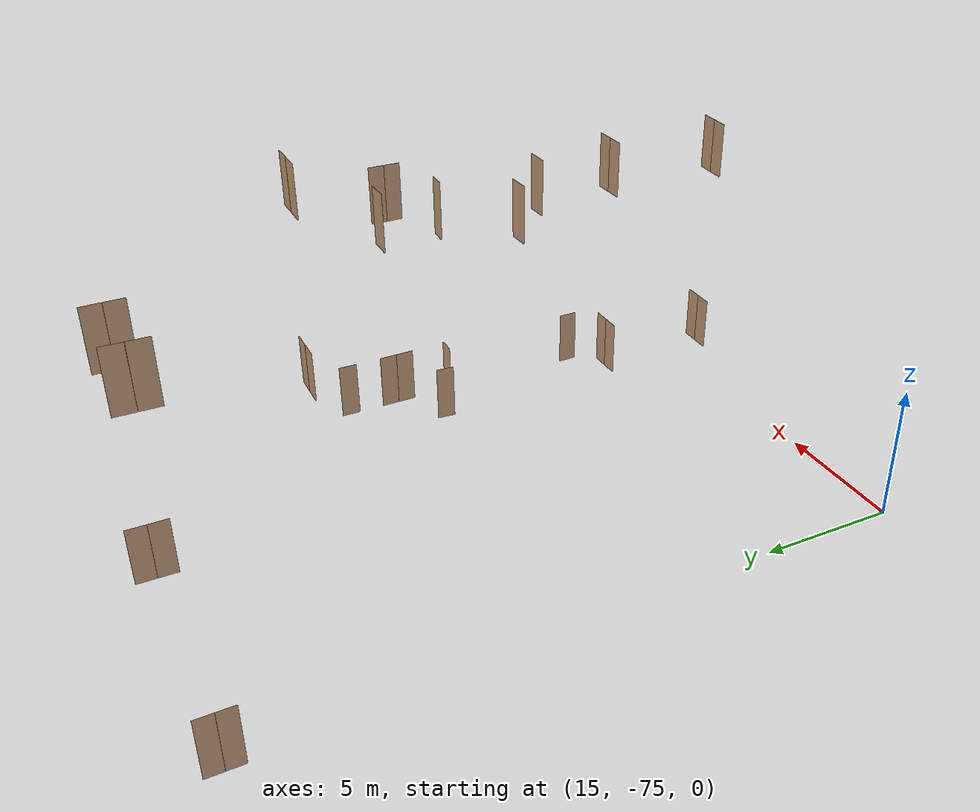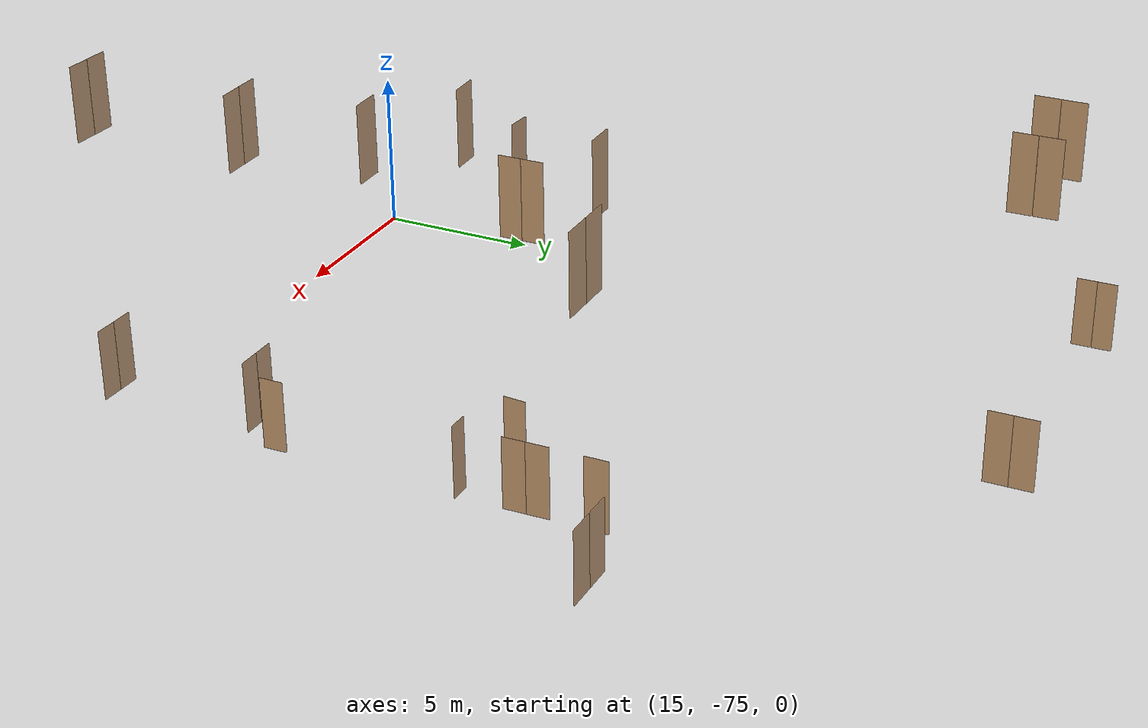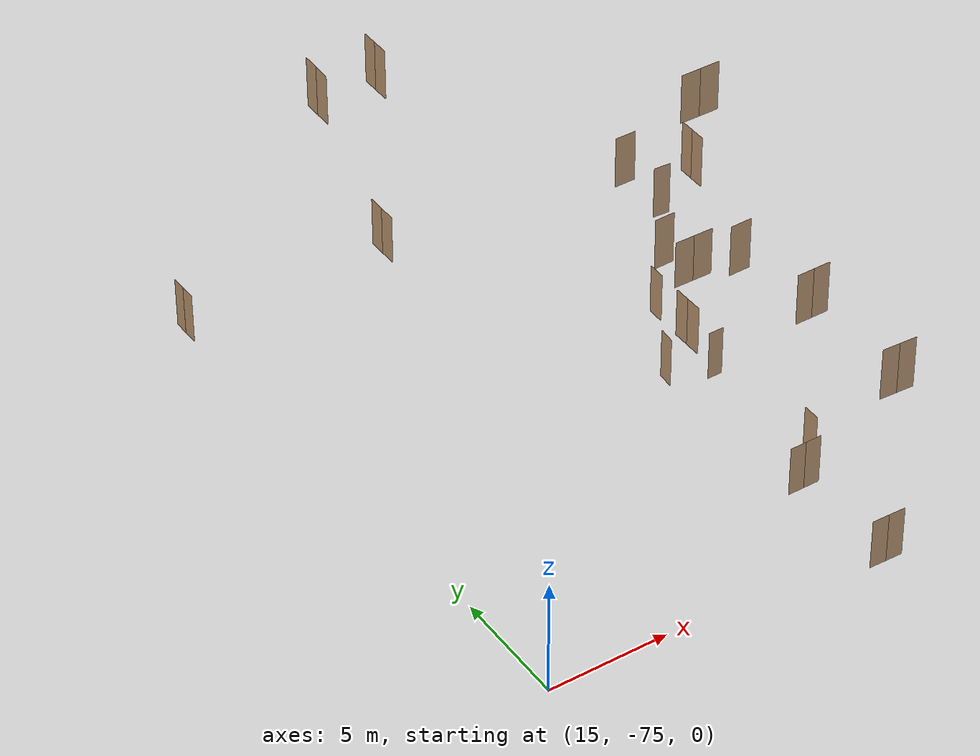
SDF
<sdf version="1.7">
 <world name="sim_world">
  <model name="TD1013AL2">
   <pose>28.615494677734596 -71.43441845900185 0.0 0 0 -3.1360970245967152</pose>
   <link name="right">
    <pose>0.3400059322993263 0 1.11 0 0 0</pose>
    <visual name="right_visual">
     <geometry><box><size>0.6700118645986526 0.03 2.2</size></box></geometry>
     <material>
      <ambient>0.5 0.25 0 0.6</ambient>
      <diffuse>0.5 0.25 0 0.6</diffuse>
      <pbr><metal><metalness>0.0</metalness></metal></pbr>
     </material>
    </visual>
    <collision name="right_collision">
     <geometry><box><size>0.6700118645986526 0.03 2.2</size></box></geometry>
     <surface><contact><collide_bitmask>0x02</collide_bitmask></contact></surface>
    </collision>
    <inertial>
     <mass>50.0</mass>
     <inertia><ixx>20.17041666666667</ixx><iyy>22.037149577929018</iyy><izz>1.8742329112623468</izz></inertia>
    </inertial>
   </link>
   <joint name="right_joint" type="revolute">
    <parent>world</parent>
    <child>right</child>
    <axis><xyz>0 0 -1</xyz><limit><lower>0</lower><upper>1.57</upper></limit></axis>
    <pose>0.3400059322993263 0 0 0 0 0</pose>
   </joint>
   <link name="left">
    <pose>-0.3400059322993263 0 1.11 0 0 0</pose>
    <visual name="left_visual">
     <geometry><box><size>0.6700118645986526 0.03 2.2</size></box></geometry>
     <material>
      <ambient>0.5 0.25 0 0.6</ambient>
      <diffuse>0.5 0.25 0 0.6</diffuse>
      <pbr><metal><metalness>0.0</metalness></metal></pbr>
     </material>
    </visual>
    <collision name="left_collision">
     <geometry><box><size>0.6700118645986526 0.03 2.2</size></box></geometry>
     <surface><contact><collide_bitmask>0x02</collide_bitmask></contact></surface>
    </collision>
    <inertial>
     <mass>50.0</mass>
     <inertia><ixx>20.17041666666667</ixx><iyy>22.037149577929018</iyy><izz>1.8742329112623468</izz></inertia>
    </inertial>
   </link>
   <joint name="left_joint" type="revolute">
    <parent>world</parent>
    <child>left</child>
    <axis><xyz>0 0 -1</xyz><limit><lower>-1.57</lower><upper>0</upper></limit></axis>
    <pose>-0.3400059322993263 0 0 0 0 0</pose>
   </joint>
   <plugin name="register_component" filename="libregister_component.so">
    <component name="Door">
     <v_max_door>0.5</v_max_door>
     <a_max_door>0.3</a_max_door>
     <a_nom_door>0.15</a_nom_door>
     <dx_min_door>0.01</dx_min_door>
     <f_max_door>500.0</f_max_door>
     <ros_interface>true</ros_interface>
     <door name="TD1013AL2" type="DoubleSwingDoor" left_joint_name="left_joint" right_joint_name="right_joint"/>
    </component>
   </plugin>
  </model>
  <model name="TD1012AL">
   <pose>28.74935599891922 -76.20730177365475 0.0 0 0 -0.019155480712126263</pose>
   <link name="right">
    <pose>0.3506591178894858 0 1.11 0 0 0</pose>
    <visual name="right_visual">
     <geometry><box><size>0.6913182357789716 0.03 2.2</size></box></geometry>
     <material>
      <ambient>0.5 0.25 0 0.6</ambient>
      <diffuse>0.5 0.25 0 0.6</diffuse>
      <pbr><metal><metalness>0.0</metalness></metal></pbr>
     </material>
    </visual>
    <collision name="right_collision">
     <geometry><box><size>0.6913182357789716 0.03 2.2</size></box></geometry>
     <surface><contact><collide_bitmask>0x02</collide_bitmask></contact></surface>
    </collision>
    <inertial>
     <mass>50.0</mass>
     <inertia><ixx>20.17041666666667</ixx><iyy>22.158003763002295</iyy><izz>1.995087096335624</izz></inertia>
    </inertial>
   </link>
   <joint name="right_joint" type="revolute">
    <parent>world</parent>
    <child>right</child>
    <axis><xyz>0 0 -1</xyz><limit><lower>0</lower><upper>1.57</upper></limit></axis>
    <pose>0.3506591178894858 0 0 0 0 0</pose>
   </joint>
   <link name="left">
    <pose>-0.3506591178894858 0 1.11 0 0 0</pose>
    <visual name="left_visual">
     <geometry><box><size>0.6913182357789716 0.03 2.2</size></box></geometry>
     <material>
      <ambient>0.5 0.25 0 0.6</ambient>
      <diffuse>0.5 0.25 0 0.6</diffuse>
      <pbr><metal><metalness>0.0</metalness></metal></pbr>
     </material>
    </visual>
    <collision name="left_collision">
     <geometry><box><size>0.6913182357789716 0.03 2.2</size></box></geometry>
     <surface><contact><collide_bitmask>0x02</collide_bitmask></contact></surface>
    </collision>
    <inertial>
     <mass>50.0</mass>
     <inertia><ixx>20.17041666666667</ixx><iyy>22.158003763002295</iyy><izz>1.995087096335624</izz></inertia>
    </inertial>
   </link>
   <joint name="left_joint" type="revolute">
    <parent>world</parent>
    <child>left</child>
    <axis><xyz>0 0 -1</xyz><limit><lower>-1.57</lower><upper>0</upper></limit></axis>
    <pose>-0.3506591178894858 0 0 0 0 0</pose>
   </joint>
   <plugin name="register_component" filename="libregister_component.so">
    <component name="Door">
     <v_max_door>0.5</v_max_door>
     <a_max_door>0.3</a_max_door>
     <a_nom_door>0.15</a_nom_door>
     <dx_min_door>0.01</dx_min_door>
     <f_max_door>500.0</f_max_door>
     <ros_interface>true</ros_interface>
     <door name="TD1012AL" type="DoubleSwingDoor" left_joint_name="left_joint" right_joint_name="right_joint"/>
    </component>
   </plugin>
  </model>
  <model name="TN3">
   <pose>29.7646617994637 -70.20799602749449 0.0 0 0 1.5837881802092755</pose>
   <link name="right">
    <pose>0 0 1.11 0 0 0</pose>
    <visual name="right_visual">
     <geometry><box><size>0.7225283452947034 0.03 2.2</size></box></geometry>
     <material>
      <ambient>0.5 0.25 0 0.6</ambient>
      <diffuse>0.5 0.25 0 0.6</diffuse>
      <pbr><metal><metalness>0.0</metalness></metal></pbr>
     </material>
    </visual>
    <collision name="right_collision">
     <geometry><box><size>0.7225283452947034 0.03 2.2</size></box></geometry>
     <surface><contact><collide_bitmask>0x02</collide_bitmask></contact></surface>
    </collision>
    <inertial>
     <mass>50.0</mass>
     <inertia><ixx>20.17041666666667</ixx><iyy>22.341863373976267</iyy><izz>2.1789467073095925</izz></inertia>
    </inertial>
   </link>
   <joint name="right_joint" type="revolute">
    <parent>world</parent>
    <child>right</child>
    <axis><xyz>0 0 -1</xyz><limit><lower>0</lower><upper>1.57</upper></limit></axis>
    <pose>0.3662641726473517 0 0 0 0 0</pose>
   </joint>
   <plugin name="register_component" filename="libregister_component.so">
    <component name="Door">
     <v_max_door>0.5</v_max_door>
     <a_max_door>0.3</a_max_door>
     <a_nom_door>0.15</a_nom_door>
     <dx_min_door>0.01</dx_min_door>
     <f_max_door>500.0</f_max_door>
     <ros_interface>true</ros_interface>
     <door name="TN3" type="SwingDoor" left_joint_name="empty_joint" right_joint_name="right_joint"/>
    </component>
   </plugin>
  </model>
  <model name="TD1013AL1">
   <pose>29.58629226233187 -64.46540370538672 0.0 0 0 0.009366742804353713</pose>
   <link name="right">
    <pose>0 0 1.11 0 0 0</pose>
    <visual name="right_visual">
     <geometry><box><size>0.6226145179343526 0.03 2.2</size></box></geometry>
     <material>
      <ambient>0.5 0.25 0 0.6</ambient>
      <diffuse>0.5 0.25 0 0.6</diffuse>
      <pbr><metal><metalness>0.0</metalness></metal></pbr>
     </material>
    </visual>
    <collision name="right_collision">
     <geometry><box><size>0.6226145179343526 0.03 2.2</size></box></geometry>
     <surface><contact><collide_bitmask>0x02</collide_bitmask></contact></surface>
    </collision>
    <inertial>
     <mass>50.0</mass>
     <inertia><ixx>20.17041666666667</ixx><iyy>21.78187015809428</iyy><izz>1.6189534914276098</izz></inertia>
    </inertial>
   </link>
   <joint name="right_joint" type="revolute">
    <parent>world</parent>
    <child>right</child>
    <axis><xyz>0 0 1</xyz><limit><lower>0</lower><upper>1.57</upper></limit></axis>
    <pose>0.3163072589671763 0 0 0 0 0</pose>
   </joint>
   <plugin name="register_component" filename="libregister_component.so">
    <component name="Door">
     <v_max_door>0.5</v_max_door>
     <a_max_door>0.3</a_max_door>
     <a_nom_door>0.15</a_nom_door>
     <dx_min_door>0.01</dx_min_door>
     <f_max_door>500.0</f_max_door>
     <ros_interface>true</ros_interface>
     <door name="TD1013AL1" type="SwingDoor" left_joint_name="empty_joint" right_joint_name="right_joint"/>
    </component>
   </plugin>
  </model>
  <model name="TD1020CA">
   <pose>27.869303102710525 -63.66825100867423 0.0 0 0 -1.6530942220449312</pose>
   <link name="right">
    <pose>0 0 1.11 0 0 0</pose>
    <visual name="right_visual">
     <geometry><box><size>0.6884247753982287 0.03 2.2</size></box></geometry>
     <material>
      <ambient>0.5 0.25 0 0.6</ambient>
      <diffuse>0.5 0.25 0 0.6</diffuse>
      <pbr><metal><metalness>0.0</metalness></metal></pbr>
     </material>
    </visual>
    <collision name="right_collision">
     <geometry><box><size>0.6884247753982287 0.03 2.2</size></box></geometry>
     <surface><contact><collide_bitmask>0x02</collide_bitmask></contact></surface>
    </collision>
    <inertial>
     <mass>50.0</mass>
     <inertia><ixx>20.17041666666667</ixx><iyy>22.141369464092097</iyy><izz>1.9784527974254236</izz></inertia>
    </inertial>
   </link>
   <joint name="right_joint" type="revolute">
    <parent>world</parent>
    <child>right</child>
    <axis><xyz>0 0 1</xyz><limit><lower>0</lower><upper>1.57</upper></limit></axis>
    <pose>0.34921238769911433 0 0 0 0 0</pose>
   </joint>
   <plugin name="register_component" filename="libregister_component.so">
    <component name="Door">
     <v_max_door>0.5</v_max_door>
     <a_max_door>0.3</a_max_door>
     <a_nom_door>0.15</a_nom_door>
     <dx_min_door>0.01</dx_min_door>
     <f_max_door>500.0</f_max_door>
     <ros_interface>true</ros_interface>
     <door name="TD1020CA" type="SwingDoor" left_joint_name="empty_joint" right_joint_name="right_joint"/>
    </component>
   </plugin>
  </model>
  <model name="TD1014AL">
   <pose>29.774829334422893 -62.3640345900398 0.0 0 0 -1.5524594989999174</pose>
   <link name="right">
    <pose>0.34886906712951293 0 1.11 0 0 0</pose>
    <visual name="right_visual">
     <geometry><box><size>0.6877381342590259 0.03 2.2</size></box></geometry>
     <material>
      <ambient>0.5 0.25 0 0.6</ambient>
      <diffuse>0.5 0.25 0 0.6</diffuse>
      <pbr><metal><metalness>0.0</metalness></metal></pbr>
     </material>
    </visual>
    <collision name="right_collision">
     <geometry><box><size>0.6877381342590259 0.03 2.2</size></box></geometry>
     <surface><contact><collide_bitmask>0x02</collide_bitmask></contact></surface>
    </collision>
    <inertial>
     <mass>50.0</mass>
     <inertia><ixx>20.17041666666667</ixx><iyy>22.137432255475364</iyy><izz>1.9745155888086914</izz></inertia>
    </inertial>
   </link>
   <joint name="right_joint" type="revolute">
    <parent>world</parent>
    <child>right</child>
    <axis><xyz>0 0 -1</xyz><limit><lower>0</lower><upper>1.57</upper></limit></axis>
    <pose>0.34886906712951293 0 0 0 0 0</pose>
   </joint>
   <link name="left">
    <pose>-0.34886906712951293 0 1.11 0 0 0</pose>
    <visual name="left_visual">
     <geometry><box><size>0.6877381342590259 0.03 2.2</size></box></geometry>
     <material>
      <ambient>0.5 0.25 0 0.6</ambient>
      <diffuse>0.5 0.25 0 0.6</diffuse>
      <pbr><metal><metalness>0.0</metalness></metal></pbr>
     </material>
    </visual>
    <collision name="left_collision">
     <geometry><box><size>0.6877381342590259 0.03 2.2</size></box></geometry>
     <surface><contact><collide_bitmask>0x02</collide_bitmask></contact></surface>
    </collision>
    <inertial>
     <mass>50.0</mass>
     <inertia><ixx>20.17041666666667</ixx><iyy>22.137432255475364</iyy><izz>1.9745155888086914</izz></inertia>
    </inertial>
   </link>
   <joint name="left_joint" type="revolute">
    <parent>world</parent>
    <child>left</child>
    <axis><xyz>0 0 -1</xyz><limit><lower>-1.57</lower><upper>0</upper></limit></axis>
    <pose>-0.34886906712951293 0 0 0 0 0</pose>
   </joint>
   <plugin name="register_component" filename="libregister_component.so">
    <component name="Door">
     <v_max_door>0.5</v_max_door>
     <a_max_door>0.3</a_max_door>
     <a_nom_door>0.15</a_nom_door>
     <dx_min_door>0.01</dx_min_door>
     <f_max_door>500.0</f_max_door>
     <ros_interface>true</ros_interface>
     <door name="TD1014AL" type="DoubleSwingDoor" left_joint_name="left_joint" right_joint_name="right_joint"/>
    </component>
   </plugin>
  </model>
  <model name="TN1">
   <pose>29.762035747388147 -60.30318972274769 0.0 0 0 -1.5707963267948966</pose>
   <link name="right">
    <pose>0 0 1.11 0 0 0</pose>
    <visual name="right_visual">
     <geometry><box><size>0.7196160241027394 0.03 2.2</size></box></geometry>
     <material>
      <ambient>0.5 0.25 0 0.6</ambient>
      <diffuse>0.5 0.25 0 0.6</diffuse>
      <pbr><metal><metalness>0.0</metalness></metal></pbr>
     </material>
    </visual>
    <collision name="right_collision">
     <geometry><box><size>0.7196160241027394 0.03 2.2</size></box></geometry>
     <surface><contact><collide_bitmask>0x02</collide_bitmask></contact></surface>
    </collision>
    <inertial>
     <mass>50.0</mass>
     <inertia><ixx>20.17041666666667</ixx><iyy>22.32436342560598</iyy><izz>2.1614467589393103</izz></inertia>
    </inertial>
   </link>
   <joint name="right_joint" type="revolute">
    <parent>world</parent>
    <child>right</child>
    <axis><xyz>0 0 1</xyz><limit><lower>0</lower><upper>1.57</upper></limit></axis>
    <pose>0.3648080120513697 0 0 0 0 0</pose>
   </joint>
   <plugin name="register_component" filename="libregister_component.so">
    <component name="Door">
     <v_max_door>0.5</v_max_door>
     <a_max_door>0.3</a_max_door>
     <a_nom_door>0.15</a_nom_door>
     <dx_min_door>0.01</dx_min_door>
     <f_max_door>500.0</f_max_door>
     <ros_interface>true</ros_interface>
     <door name="TN1" type="SwingDoor" left_joint_name="empty_joint" right_joint_name="right_joint"/>
    </component>
   </plugin>
  </model>
  <model name="TD1002CP">
   <pose>32.20689022972852 -59.33034965320277 0.0 0 0 -0.007458642109472351</pose>
   <link name="right">
    <pose>0.4288215424630806 0 1.11 0 0 0</pose>
    <visual name="right_visual">
     <geometry><box><size>0.8476430849261611 0.03 2.2</size></box></geometry>
     <material>
      <ambient>0.5 0.25 0 0.6</ambient>
      <diffuse>0.5 0.25 0 0.6</diffuse>
      <pbr><metal><metalness>0.0</metalness></metal></pbr>
     </material>
    </visual>
    <collision name="right_collision">
     <geometry><box><size>0.8476430849261611 0.03 2.2</size></box></geometry>
     <surface><contact><collide_bitmask>0x02</collide_bitmask></contact></surface>
    </collision>
    <inertial>
     <mass>50.0</mass>
     <inertia><ixx>20.17041666666667</ixx><iyy>23.160411664263087</iyy><izz>2.9974949975964136</izz></inertia>
    </inertial>
   </link>
   <joint name="right_joint" type="revolute">
    <parent>world</parent>
    <child>right</child>
    <axis><xyz>0 0 -1</xyz><limit><lower>0</lower><upper>1.57</upper></limit></axis>
    <pose>0.4288215424630806 0 0 0 0 0</pose>
   </joint>
   <link name="left">
    <pose>-0.4288215424630806 0 1.11 0 0 0</pose>
    <visual name="left_visual">
     <geometry><box><size>0.8476430849261611 0.03 2.2</size></box></geometry>
     <material>
      <ambient>0.5 0.25 0 0.6</ambient>
      <diffuse>0.5 0.25 0 0.6</diffuse>
      <pbr><metal><metalness>0.0</metalness></metal></pbr>
     </material>
    </visual>
    <collision name="left_collision">
     <geometry><box><size>0.8476430849261611 0.03 2.2</size></box></geometry>
     <surface><contact><collide_bitmask>0x02</collide_bitmask></contact></surface>
    </collision>
    <inertial>
     <mass>50.0</mass>
     <inertia><ixx>20.17041666666667</ixx><iyy>23.160411664263087</iyy><izz>2.9974949975964136</izz></inertia>
    </inertial>
   </link>
   <joint name="left_joint" type="revolute">
    <parent>world</parent>
    <child>left</child>
    <axis><xyz>0 0 -1</xyz><limit><lower>-1.57</lower><upper>0</upper></limit></axis>
    <pose>-0.4288215424630806 0 0 0 0 0</pose>
   </joint>
   <plugin name="register_component" filename="libregister_component.so">
    <component name="Door">
     <v_max_door>0.5</v_max_door>
     <a_max_door>0.3</a_max_door>
     <a_nom_door>0.15</a_nom_door>
     <dx_min_door>0.01</dx_min_door>
     <f_max_door>500.0</f_max_door>
     <ros_interface>true</ros_interface>
     <door name="TD1002CP" type="DoubleSwingDoor" left_joint_name="left_joint" right_joint_name="right_joint"/>
    </component>
   </plugin>
  </model>
  <model name="TD1005CP1">
   <pose>23.027873095418798 -51.20491807853885 0.0 0 0 1.5707963267948966</pose>
   <link name="right">
    <pose>0.36435911426067413 0 1.11 0 0 0</pose>
    <visual name="right_visual">
     <geometry><box><size>0.7187182285213483 0.03 2.2</size></box></geometry>
     <material>
      <ambient>0.5 0.25 0 0.6</ambient>
      <diffuse>0.5 0.25 0 0.6</diffuse>
      <pbr><metal><metalness>0.0</metalness></metal></pbr>
     </material>
    </visual>
    <collision name="right_collision">
     <geometry><box><size>0.7187182285213483 0.03 2.2</size></box></geometry>
     <surface><contact><collide_bitmask>0x02</collide_bitmask></contact></surface>
    </collision>
    <inertial>
     <mass>50.0</mass>
     <inertia><ixx>20.17041666666667</ixx><iyy>22.31898288337028</iyy><izz>2.1560662167036044</izz></inertia>
    </inertial>
   </link>
   <joint name="right_joint" type="revolute">
    <parent>world</parent>
    <child>right</child>
    <axis><xyz>0 0 -1</xyz><limit><lower>0</lower><upper>1.57</upper></limit></axis>
    <pose>0.36435911426067413 0 0 0 0 0</pose>
   </joint>
   <link name="left">
    <pose>-0.36435911426067413 0 1.11 0 0 0</pose>
    <visual name="left_visual">
     <geometry><box><size>0.7187182285213483 0.03 2.2</size></box></geometry>
     <material>
      <ambient>0.5 0.25 0 0.6</ambient>
      <diffuse>0.5 0.25 0 0.6</diffuse>
      <pbr><metal><metalness>0.0</metalness></metal></pbr>
     </material>
    </visual>
    <collision name="left_collision">
     <geometry><box><size>0.7187182285213483 0.03 2.2</size></box></geometry>
     <surface><contact><collide_bitmask>0x02</collide_bitmask></contact></surface>
    </collision>
    <inertial>
     <mass>50.0</mass>
     <inertia><ixx>20.17041666666667</ixx><iyy>22.31898288337028</iyy><izz>2.1560662167036044</izz></inertia>
    </inertial>
   </link>
   <joint name="left_joint" type="revolute">
    <parent>world</parent>
    <child>left</child>
    <axis><xyz>0 0 -1</xyz><limit><lower>-1.57</lower><upper>0</upper></limit></axis>
    <pose>-0.36435911426067413 0 0 0 0 0</pose>
   </joint>
   <plugin name="register_component" filename="libregister_component.so">
    <component name="Door">
     <v_max_door>0.5</v_max_door>
     <a_max_door>0.3</a_max_door>
     <a_nom_door>0.15</a_nom_door>
     <dx_min_door>0.01</dx_min_door>
     <f_max_door>500.0</f_max_door>
     <ros_interface>true</ros_interface>
     <door name="TD1005CP1" type="DoubleSwingDoor" left_joint_name="left_joint" right_joint_name="right_joint"/>
    </component>
   </plugin>
  </model>
  <model name="TD1023CP1">
   <pose>14.136285216489753 -51.20540064366385 0.0 0 0 1.579823871915645</pose>
   <link name="right">
    <pose>0.3095444736708306 0 1.11 0 0 0</pose>
    <visual name="right_visual">
     <geometry><box><size>0.6090889473416612 0.03 2.2</size></box></geometry>
     <material>
      <ambient>0.5 0.25 0 0.6</ambient>
      <diffuse>0.5 0.25 0 0.6</diffuse>
      <pbr><metal><metalness>0.0</metalness></metal></pbr>
     </material>
    </visual>
    <collision name="right_collision">
     <geometry><box><size>0.6090889473416612 0.03 2.2</size></box></geometry>
     <surface><contact><collide_bitmask>0x02</collide_bitmask></contact></surface>
    </collision>
    <inertial>
     <mass>50.0</mass>
     <inertia><ixx>20.17041666666667</ixx><iyy>21.712455607390726</iyy><izz>1.5495389407240538</izz></inertia>
    </inertial>
   </link>
   <joint name="right_joint" type="revolute">
    <parent>world</parent>
    <child>right</child>
    <axis><xyz>0 0 -1</xyz><limit><lower>0</lower><upper>1.57</upper></limit></axis>
    <pose>0.3095444736708306 0 0 0 0 0</pose>
   </joint>
   <link name="left">
    <pose>-0.3095444736708306 0 1.11 0 0 0</pose>
    <visual name="left_visual">
     <geometry><box><size>0.6090889473416612 0.03 2.2</size></box></geometry>
     <material>
      <ambient>0.5 0.25 0 0.6</ambient>
      <diffuse>0.5 0.25 0 0.6</diffuse>
      <pbr><metal><metalness>0.0</metalness></metal></pbr>
     </material>
    </visual>
    <collision name="left_collision">
     <geometry><box><size>0.6090889473416612 0.03 2.2</size></box></geometry>
     <surface><contact><collide_bitmask>0x02</collide_bitmask></contact></surface>
    </collision>
    <inertial>
     <mass>50.0</mass>
     <inertia><ixx>20.17041666666667</ixx><iyy>21.712455607390726</iyy><izz>1.5495389407240538</izz></inertia>
    </inertial>
   </link>
   <joint name="left_joint" type="revolute">
    <parent>world</parent>
    <child>left</child>
    <axis><xyz>0 0 -1</xyz><limit><lower>-1.57</lower><upper>0</upper></limit></axis>
    <pose>-0.3095444736708306 0 0 0 0 0</pose>
   </joint>
   <plugin name="register_component" filename="libregister_component.so">
    <component name="Door">
     <v_max_door>0.5</v_max_door>
     <a_max_door>0.3</a_max_door>
     <a_nom_door>0.15</a_nom_door>
     <dx_min_door>0.01</dx_min_door>
     <f_max_door>500.0</f_max_door>
     <ros_interface>true</ros_interface>
     <door name="TD1023CP1" type="DoubleSwingDoor" left_joint_name="left_joint" right_joint_name="right_joint"/>
    </component>
   </plugin>
  </model>
  <model name="TD1114CP2">
   <pose>22.9216487112622 -51.234835719651585 8.0 0 0 1.5880230398319741</pose>
   <link name="right">
    <pose>0.34004597559087635 0 1.11 0 0 0</pose>
    <visual name="right_visual">
     <geometry><box><size>0.6700919511817527 0.03 2.2</size></box></geometry>
     <material>
      <ambient>0.5 0.25 0 0.6</ambient>
      <diffuse>0.5 0.25 0 0.6</diffuse>
      <pbr><metal><metalness>0.0</metalness></metal></pbr>
     </material>
    </visual>
    <collision name="right_collision">
     <geometry><box><size>0.6700919511817527 0.03 2.2</size></box></geometry>
     <surface><contact><collide_bitmask>0x02</collide_bitmask></contact></surface>
    </collision>
    <inertial>
     <mass>50.0</mass>
     <inertia><ixx>20.17041666666667</ixx><iyy>22.037596762660705</iyy><izz>1.8746800959940355</izz></inertia>
    </inertial>
   </link>
   <joint name="right_joint" type="revolute">
    <parent>world</parent>
    <child>right</child>
    <axis><xyz>0 0 -1</xyz><limit><lower>0</lower><upper>1.57</upper></limit></axis>
    <pose>0.34004597559087635 0 0 0 0 0</pose>
   </joint>
   <link name="left">
    <pose>-0.34004597559087635 0 1.11 0 0 0</pose>
    <visual name="left_visual">
     <geometry><box><size>0.6700919511817527 0.03 2.2</size></box></geometry>
     <material>
      <ambient>0.5 0.25 0 0.6</ambient>
      <diffuse>0.5 0.25 0 0.6</diffuse>
      <pbr><metal><metalness>0.0</metalness></metal></pbr>
     </material>
    </visual>
    <collision name="left_collision">
     <geometry><box><size>0.6700919511817527 0.03 2.2</size></box></geometry>
     <surface><contact><collide_bitmask>0x02</collide_bitmask></contact></surface>
    </collision>
    <inertial>
     <mass>50.0</mass>
     <inertia><ixx>20.17041666666667</ixx><iyy>22.037596762660705</iyy><izz>1.8746800959940355</izz></inertia>
    </inertial>
   </link>
   <joint name="left_joint" type="revolute">
    <parent>world</parent>
    <child>left</child>
    <axis><xyz>0 0 -1</xyz><limit><lower>-1.57</lower><upper>0</upper></limit></axis>
    <pose>-0.34004597559087635 0 0 0 0 0</pose>
   </joint>
   <plugin name="register_component" filename="libregister_component.so">
    <component name="Door">
     <v_max_door>0.5</v_max_door>
     <a_max_door>0.3</a_max_door>
     <a_nom_door>0.15</a_nom_door>
     <dx_min_door>0.01</dx_min_door>
     <f_max_door>500.0</f_max_door>
     <ros_interface>true</ros_interface>
     <door name="TD1114CP2" type="DoubleSwingDoor" left_joint_name="left_joint" right_joint_name="right_joint"/>
    </component>
   </plugin>
  </model>
  <model name="TC1114CP3">
   <pose>20.261239705075116 -51.376082773769355 8.0 0 0 1.5632942395434615</pose>
   <link name="right">
    <pose>0.3608989107627863 0 1.11 0 0 0</pose>
    <visual name="right_visual">
     <geometry><box><size>0.7117978215255726 0.03 2.2</size></box></geometry>
     <material>
      <ambient>0.5 0.25 0 0.6</ambient>
      <diffuse>0.5 0.25 0 0.6</diffuse>
      <pbr><metal><metalness>0.0</metalness></metal></pbr>
     </material>
    </visual>
    <collision name="right_collision">
     <geometry><box><size>0.7117978215255726 0.03 2.2</size></box></geometry>
     <surface><contact><collide_bitmask>0x02</collide_bitmask></contact></surface>
    </collision>
    <inertial>
     <mass>50.0</mass>
     <inertia><ixx>20.17041666666667</ixx><iyy>22.277733911368966</iyy><izz>2.1148172447022953</izz></inertia>
    </inertial>
   </link>
   <joint name="right_joint" type="revolute">
    <parent>world</parent>
    <child>right</child>
    <axis><xyz>0 0 -1</xyz><limit><lower>0</lower><upper>1.57</upper></limit></axis>
    <pose>0.3608989107627863 0 0 0 0 0</pose>
   </joint>
   <link name="left">
    <pose>-0.3608989107627863 0 1.11 0 0 0</pose>
    <visual name="left_visual">
     <geometry><box><size>0.7117978215255726 0.03 2.2</size></box></geometry>
     <material>
      <ambient>0.5 0.25 0 0.6</ambient>
      <diffuse>0.5 0.25 0 0.6</diffuse>
      <pbr><metal><metalness>0.0</metalness></metal></pbr>
     </material>
    </visual>
    <collision name="left_collision">
     <geometry><box><size>0.7117978215255726 0.03 2.2</size></box></geometry>
     <surface><contact><collide_bitmask>0x02</collide_bitmask></contact></surface>
    </collision>
    <inertial>
     <mass>50.0</mass>
     <inertia><ixx>20.17041666666667</ixx><iyy>22.277733911368966</iyy><izz>2.1148172447022953</izz></inertia>
    </inertial>
   </link>
   <joint name="left_joint" type="revolute">
    <parent>world</parent>
    <child>left</child>
    <axis><xyz>0 0 -1</xyz><limit><lower>-1.57</lower><upper>0</upper></limit></axis>
    <pose>-0.3608989107627863 0 0 0 0 0</pose>
   </joint>
   <plugin name="register_component" filename="libregister_component.so">
    <component name="Door">
     <v_max_door>0.5</v_max_door>
     <a_max_door>0.3</a_max_door>
     <a_nom_door>0.15</a_nom_door>
     <dx_min_door>0.01</dx_min_door>
     <f_max_door>500.0</f_max_door>
     <ros_interface>true</ros_interface>
     <door name="TC1114CP3" type="DoubleSwingDoor" left_joint_name="left_joint" right_joint_name="right_joint"/>
    </component>
   </plugin>
  </model>
  <model name="door">
   <pose>29.73892054717852 -62.333095334997715 8.0 0 0 -1.5576285929037816</pose>
   <link name="right">
    <pose>0.3054553485527327 0 1.11 0 0 0</pose>
    <visual name="right_visual">
     <geometry><box><size>0.6009106971054654 0.03 2.2</size></box></geometry>
     <material>
      <ambient>0.5 0.25 0 0.6</ambient>
      <diffuse>0.5 0.25 0 0.6</diffuse>
      <pbr><metal><metalness>0.0</metalness></metal></pbr>
     </material>
    </visual>
    <collision name="right_collision">
     <geometry><box><size>0.6009106971054654 0.03 2.2</size></box></geometry>
     <surface><contact><collide_bitmask>0x02</collide_bitmask></contact></surface>
    </collision>
    <inertial>
     <mass>50.0</mass>
     <inertia><ixx>20.17041666666667</ixx><iyy>21.671223607899073</iyy><izz>1.508306941232402</izz></inertia>
    </inertial>
   </link>
   <joint name="right_joint" type="revolute">
    <parent>world</parent>
    <child>right</child>
    <axis><xyz>0 0 -1</xyz><limit><lower>0</lower><upper>1.57</upper></limit></axis>
    <pose>0.3054553485527327 0 0 0 0 0</pose>
   </joint>
   <link name="left">
    <pose>-0.3054553485527327 0 1.11 0 0 0</pose>
    <visual name="left_visual">
     <geometry><box><size>0.6009106971054654 0.03 2.2</size></box></geometry>
     <material>
      <ambient>0.5 0.25 0 0.6</ambient>
      <diffuse>0.5 0.25 0 0.6</diffuse>
      <pbr><metal><metalness>0.0</metalness></metal></pbr>
     </material>
    </visual>
    <collision name="left_collision">
     <geometry><box><size>0.6009106971054654 0.03 2.2</size></box></geometry>
     <surface><contact><collide_bitmask>0x02</collide_bitmask></contact></surface>
    </collision>
    <inertial>
     <mass>50.0</mass>
     <inertia><ixx>20.17041666666667</ixx><iyy>21.671223607899073</iyy><izz>1.508306941232402</izz></inertia>
    </inertial>
   </link>
   <joint name="left_joint" type="revolute">
    <parent>world</parent>
    <child>left</child>
    <axis><xyz>0 0 -1</xyz><limit><lower>-1.57</lower><upper>0</upper></limit></axis>
    <pose>-0.3054553485527327 0 0 0 0 0</pose>
   </joint>
   <plugin name="register_component" filename="libregister_component.so">
    <component name="Door">
     <v_max_door>0.5</v_max_door>
     <a_max_door>0.3</a_max_door>
     <a_nom_door>0.15</a_nom_door>
     <dx_min_door>0.01</dx_min_door>
     <f_max_door>500.0</f_max_door>
     <ros_interface>true</ros_interface>
     <door name="door" type="DoubleSwingDoor" left_joint_name="left_joint" right_joint_name="right_joint"/>
    </component>
   </plugin>
  </model>
  <model name="d4">
   <pose>27.568806973245728 -63.507538001600025 8.0 0 0 3.0808908731286304</pose>
   <link name="right">
    <pose>0 0 1.11 0 0 0</pose>
    <visual name="right_visual">
     <geometry><box><size>0.6673311542468745 0.03 2.2</size></box></geometry>
     <material>
      <ambient>0.5 0.25 0 0.6</ambient>
      <diffuse>0.5 0.25 0 0.6</diffuse>
      <pbr><metal><metalness>0.0</metalness></metal></pbr>
     </material>
    </visual>
    <collision name="right_collision">
     <geometry><box><size>0.6673311542468745 0.03 2.2</size></box></geometry>
     <surface><contact><collide_bitmask>0x02</collide_bitmask></contact></surface>
    </collision>
    <inertial>
     <mass>50.0</mass>
     <inertia><ixx>20.17041666666667</ixx><iyy>22.022211955951946</iyy><izz>1.8592952892852745</izz></inertia>
    </inertial>
   </link>
   <joint name="right_joint" type="revolute">
    <parent>world</parent>
    <child>right</child>
    <axis><xyz>0 0 -1</xyz><limit><lower>0</lower><upper>1.57</upper></limit></axis>
    <pose>0.33866557712343726 0 0 0 0 0</pose>
   </joint>
   <plugin name="register_component" filename="libregister_component.so">
    <component name="Door">
     <v_max_door>0.5</v_max_door>
     <a_max_door>0.3</a_max_door>
     <a_nom_door>0.15</a_nom_door>
     <dx_min_door>0.01</dx_min_door>
     <f_max_door>500.0</f_max_door>
     <ros_interface>true</ros_interface>
     <door name="d4" type="SwingDoor" left_joint_name="empty_joint" right_joint_name="right_joint"/>
    </component>
   </plugin>
  </model>
  <model name="d5">
   <pose>28.014598158153348 -67.77267583487519 8.0 0 0 -3.1205721923182987</pose>
   <link name="right">
    <pose>0 0 1.11 0 0 0</pose>
    <visual name="right_visual">
     <geometry><box><size>0.8764315532339856 0.03 2.2</size></box></geometry>
     <material>
      <ambient>0.5 0.25 0 0.6</ambient>
      <diffuse>0.5 0.25 0 0.6</diffuse>
      <pbr><metal><metalness>0.0</metalness></metal></pbr>
     </material>
    </visual>
    <collision name="right_collision">
     <geometry><box><size>0.8764315532339856 0.03 2.2</size></box></geometry>
     <surface><contact><collide_bitmask>0x02</collide_bitmask></contact></surface>
    </collision>
    <inertial>
     <mass>50.0</mass>
     <inertia><ixx>20.17041666666667</ixx><iyy>23.36721778126724</iyy><izz>3.204301114600569</izz></inertia>
    </inertial>
   </link>
   <joint name="right_joint" type="revolute">
    <parent>world</parent>
    <child>right</child>
    <axis><xyz>0 0 1</xyz><limit><lower>0</lower><upper>1.57</upper></limit></axis>
    <pose>0.4432157766169928 0 0 0 0 0</pose>
   </joint>
   <plugin name="register_component" filename="libregister_component.so">
    <component name="Door">
     <v_max_door>0.5</v_max_door>
     <a_max_door>0.3</a_max_door>
     <a_nom_door>0.15</a_nom_door>
     <dx_min_door>0.01</dx_min_door>
     <f_max_door>500.0</f_max_door>
     <ros_interface>true</ros_interface>
     <door name="d5" type="SwingDoor" left_joint_name="empty_joint" right_joint_name="right_joint"/>
    </component>
   </plugin>
  </model>
  <model name="TD1111AL2">
   <pose>28.620555126127428 -71.29515602824856 8.0 0 0 -3.1358969399711842</pose>
   <link name="right">
    <pose>0.34584903390522415 0 1.11 0 0 0</pose>
    <visual name="right_visual">
     <geometry><box><size>0.6816980678104483 0.03 2.2</size></box></geometry>
     <material>
      <ambient>0.5 0.25 0 0.6</ambient>
      <diffuse>0.5 0.25 0 0.6</diffuse>
      <pbr><metal><metalness>0.0</metalness></metal></pbr>
     </material>
    </visual>
    <collision name="right_collision">
     <geometry><box><size>0.6816980678104483 0.03 2.2</size></box></geometry>
     <surface><contact><collide_bitmask>0x02</collide_bitmask></contact></surface>
    </collision>
    <inertial>
     <mass>50.0</mass>
     <inertia><ixx>20.17041666666667</ixx><iyy>22.10296773190208</iyy><izz>1.9400510652354108</izz></inertia>
    </inertial>
   </link>
   <joint name="right_joint" type="revolute">
    <parent>world</parent>
    <child>right</child>
    <axis><xyz>0 0 -1</xyz><limit><lower>0</lower><upper>1.57</upper></limit></axis>
    <pose>0.34584903390522415 0 0 0 0 0</pose>
   </joint>
   <link name="left">
    <pose>-0.34584903390522415 0 1.11 0 0 0</pose>
    <visual name="left_visual">
     <geometry><box><size>0.6816980678104483 0.03 2.2</size></box></geometry>
     <material>
      <ambient>0.5 0.25 0 0.6</ambient>
      <diffuse>0.5 0.25 0 0.6</diffuse>
      <pbr><metal><metalness>0.0</metalness></metal></pbr>
     </material>
    </visual>
    <collision name="left_collision">
     <geometry><box><size>0.6816980678104483 0.03 2.2</size></box></geometry>
     <surface><contact><collide_bitmask>0x02</collide_bitmask></contact></surface>
    </collision>
    <inertial>
     <mass>50.0</mass>
     <inertia><ixx>20.17041666666667</ixx><iyy>22.10296773190208</iyy><izz>1.9400510652354108</izz></inertia>
    </inertial>
   </link>
   <joint name="left_joint" type="revolute">
    <parent>world</parent>
    <child>left</child>
    <axis><xyz>0 0 -1</xyz><limit><lower>-1.57</lower><upper>0</upper></limit></axis>
    <pose>-0.34584903390522415 0 0 0 0 0</pose>
   </joint>
   <plugin name="register_component" filename="libregister_component.so">
    <component name="Door">
     <v_max_door>0.5</v_max_door>
     <a_max_door>0.3</a_max_door>
     <a_nom_door>0.15</a_nom_door>
     <dx_min_door>0.01</dx_min_door>
     <f_max_door>500.0</f_max_door>
     <ros_interface>true</ros_interface>
     <door name="TD1111AL2" type="DoubleSwingDoor" left_joint_name="left_joint" right_joint_name="right_joint"/>
    </component>
   </plugin>
  </model>
  <model name="TD1109AL1">
   <pose>28.635809897595426 -76.19867047898036 8.0 0 0 -0.04441612756529279</pose>
   <link name="right">
    <pose>0.349552598970735 0 1.11 0 0 0</pose>
    <visual name="right_visual">
     <geometry><box><size>0.68910519794147 0.03 2.2</size></box></geometry>
     <material>
      <ambient>0.5 0.25 0 0.6</ambient>
      <diffuse>0.5 0.25 0 0.6</diffuse>
      <pbr><metal><metalness>0.0</metalness></metal></pbr>
     </material>
    </visual>
    <collision name="right_collision">
     <geometry><box><size>0.68910519794147 0.03 2.2</size></box></geometry>
     <surface><contact><collide_bitmask>0x02</collide_bitmask></contact></surface>
    </collision>
    <inertial>
     <mass>50.0</mass>
     <inertia><ixx>20.17041666666667</ixx><iyy>22.145274890958138</iyy><izz>1.982358224291469</izz></inertia>
    </inertial>
   </link>
   <joint name="right_joint" type="revolute">
    <parent>world</parent>
    <child>right</child>
    <axis><xyz>0 0 -1</xyz><limit><lower>0</lower><upper>1.57</upper></limit></axis>
    <pose>0.349552598970735 0 0 0 0 0</pose>
   </joint>
   <link name="left">
    <pose>-0.349552598970735 0 1.11 0 0 0</pose>
    <visual name="left_visual">
     <geometry><box><size>0.68910519794147 0.03 2.2</size></box></geometry>
     <material>
      <ambient>0.5 0.25 0 0.6</ambient>
      <diffuse>0.5 0.25 0 0.6</diffuse>
      <pbr><metal><metalness>0.0</metalness></metal></pbr>
     </material>
    </visual>
    <collision name="left_collision">
     <geometry><box><size>0.68910519794147 0.03 2.2</size></box></geometry>
     <surface><contact><collide_bitmask>0x02</collide_bitmask></contact></surface>
    </collision>
    <inertial>
     <mass>50.0</mass>
     <inertia><ixx>20.17041666666667</ixx><iyy>22.145274890958138</iyy><izz>1.982358224291469</izz></inertia>
    </inertial>
   </link>
   <joint name="left_joint" type="revolute">
    <parent>world</parent>
    <child>left</child>
    <axis><xyz>0 0 -1</xyz><limit><lower>-1.57</lower><upper>0</upper></limit></axis>
    <pose>-0.349552598970735 0 0 0 0 0</pose>
   </joint>
   <plugin name="register_component" filename="libregister_component.so">
    <component name="Door">
     <v_max_door>0.5</v_max_door>
     <a_max_door>0.3</a_max_door>
     <a_nom_door>0.15</a_nom_door>
     <dx_min_door>0.01</dx_min_door>
     <f_max_door>500.0</f_max_door>
     <ros_interface>true</ros_interface>
     <door name="TD1109AL1" type="DoubleSwingDoor" left_joint_name="left_joint" right_joint_name="right_joint"/>
    </component>
   </plugin>
  </model>
  <model name="TD1118CP2">
   <pose>32.20211902364819 -59.37611111488185 8.0 0 0 -0.0006382402822296309</pose>
   <link name="right">
    <pose>0.42568466201527627 0 1.11 0 0 0</pose>
    <visual name="right_visual">
     <geometry><box><size>0.8413693240305525 0.03 2.2</size></box></geometry>
     <material>
      <ambient>0.5 0.25 0 0.6</ambient>
      <diffuse>0.5 0.25 0 0.6</diffuse>
      <pbr><metal><metalness>0.0</metalness></metal></pbr>
     </material>
    </visual>
    <collision name="right_collision">
     <geometry><box><size>0.8413693240305525 0.03 2.2</size></box></geometry>
     <surface><contact><collide_bitmask>0x02</collide_bitmask></contact></surface>
    </collision>
    <inertial>
     <mass>50.0</mass>
     <inertia><ixx>20.17041666666667</ixx><iyy>23.116259747581793</iyy><izz>2.9533430809151207</izz></inertia>
    </inertial>
   </link>
   <joint name="right_joint" type="revolute">
    <parent>world</parent>
    <child>right</child>
    <axis><xyz>0 0 -1</xyz><limit><lower>0</lower><upper>1.57</upper></limit></axis>
    <pose>0.42568466201527627 0 0 0 0 0</pose>
   </joint>
   <link name="left">
    <pose>-0.42568466201527627 0 1.11 0 0 0</pose>
    <visual name="left_visual">
     <geometry><box><size>0.8413693240305525 0.03 2.2</size></box></geometry>
     <material>
      <ambient>0.5 0.25 0 0.6</ambient>
      <diffuse>0.5 0.25 0 0.6</diffuse>
      <pbr><metal><metalness>0.0</metalness></metal></pbr>
     </material>
    </visual>
    <collision name="left_collision">
     <geometry><box><size>0.8413693240305525 0.03 2.2</size></box></geometry>
     <surface><contact><collide_bitmask>0x02</collide_bitmask></contact></surface>
    </collision>
    <inertial>
     <mass>50.0</mass>
     <inertia><ixx>20.17041666666667</ixx><iyy>23.116259747581793</iyy><izz>2.9533430809151207</izz></inertia>
    </inertial>
   </link>
   <joint name="left_joint" type="revolute">
    <parent>world</parent>
    <child>left</child>
    <axis><xyz>0 0 -1</xyz><limit><lower>-1.57</lower><upper>0</upper></limit></axis>
    <pose>-0.42568466201527627 0 0 0 0 0</pose>
   </joint>
   <plugin name="register_component" filename="libregister_component.so">
    <component name="Door">
     <v_max_door>0.5</v_max_door>
     <a_max_door>0.3</a_max_door>
     <a_nom_door>0.15</a_nom_door>
     <dx_min_door>0.01</dx_min_door>
     <f_max_door>500.0</f_max_door>
     <ros_interface>true</ros_interface>
     <door name="TD1118CP2" type="DoubleSwingDoor" left_joint_name="left_joint" right_joint_name="right_joint"/>
    </component>
   </plugin>
  </model>
  <model name="d3">
   <pose>27.520006736603975 -61.23762955313446 8.0 0 0 -3.1354813227407696</pose>
   <link name="right">
    <pose>0 0 1.11 0 0 0</pose>
    <visual name="right_visual">
     <geometry><box><size>0.8564792828538613 0.03 2.2</size></box></geometry>
     <material>
      <ambient>0.5 0.25 0 0.6</ambient>
      <diffuse>0.5 0.25 0 0.6</diffuse>
      <pbr><metal><metalness>0.0</metalness></metal></pbr>
     </material>
    </visual>
    <collision name="right_collision">
     <geometry><box><size>0.8564792828538613 0.03 2.2</size></box></geometry>
     <surface><contact><collide_bitmask>0x02</collide_bitmask></contact></surface>
    </collision>
    <inertial>
     <mass>50.0</mass>
     <inertia><ixx>20.17041666666667</ixx><iyy>23.223153174824443</iyy><izz>3.0602365081577694</izz></inertia>
    </inertial>
   </link>
   <joint name="right_joint" type="revolute">
    <parent>world</parent>
    <child>right</child>
    <axis><xyz>0 0 1</xyz><limit><lower>0</lower><upper>1.57</upper></limit></axis>
    <pose>0.43323964142693067 0 0 0 0 0</pose>
   </joint>
   <plugin name="register_component" filename="libregister_component.so">
    <component name="Door">
     <v_max_door>0.5</v_max_door>
     <a_max_door>0.3</a_max_door>
     <a_nom_door>0.15</a_nom_door>
     <dx_min_door>0.01</dx_min_door>
     <f_max_door>500.0</f_max_door>
     <ros_interface>true</ros_interface>
     <door name="d3" type="SwingDoor" left_joint_name="empty_joint" right_joint_name="right_joint"/>
    </component>
   </plugin>
  </model>
  <model name="TD1111AL1">
   <pose>25.957631380359203 -65.97927593281801 8.0 0 0 -3.1064890456050174</pose>
   <link name="right">
    <pose>0 0 1.11 0 0 0</pose>
    <visual name="right_visual">
     <geometry><box><size>0.8205404928746255 0.03 2.2</size></box></geometry>
     <material>
      <ambient>0.5 0.25 0 0.6</ambient>
      <diffuse>0.5 0.25 0 0.6</diffuse>
      <pbr><metal><metalness>0.0</metalness></metal></pbr>
     </material>
    </visual>
    <collision name="right_collision">
     <geometry><box><size>0.8205404928746255 0.03 2.2</size></box></geometry>
     <surface><contact><collide_bitmask>0x02</collide_bitmask></contact></surface>
    </collision>
    <inertial>
     <mass>50.0</mass>
     <inertia><ixx>20.17041666666667</ixx><iyy>22.972027918528894</iyy><izz>2.8091112518622223</izz></inertia>
    </inertial>
   </link>
   <joint name="right_joint" type="revolute">
    <parent>world</parent>
    <child>right</child>
    <axis><xyz>0 0 1</xyz><limit><lower>0</lower><upper>1.57</upper></limit></axis>
    <pose>0.41527024643731275 0 0 0 0 0</pose>
   </joint>
   <plugin name="register_component" filename="libregister_component.so">
    <component name="Door">
     <v_max_door>0.5</v_max_door>
     <a_max_door>0.3</a_max_door>
     <a_nom_door>0.15</a_nom_door>
     <dx_min_door>0.01</dx_min_door>
     <f_max_door>500.0</f_max_door>
     <ros_interface>true</ros_interface>
     <door name="TD1111AL1" type="SwingDoor" left_joint_name="empty_joint" right_joint_name="right_joint"/>
    </component>
   </plugin>
  </model>
 </world>
</sdf>
